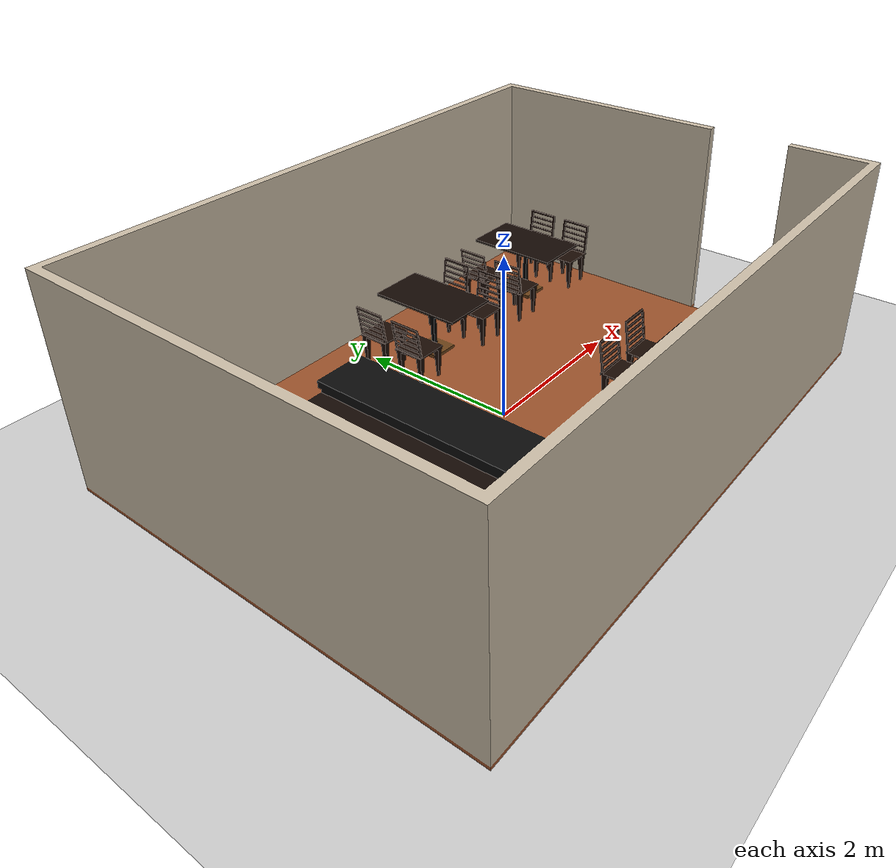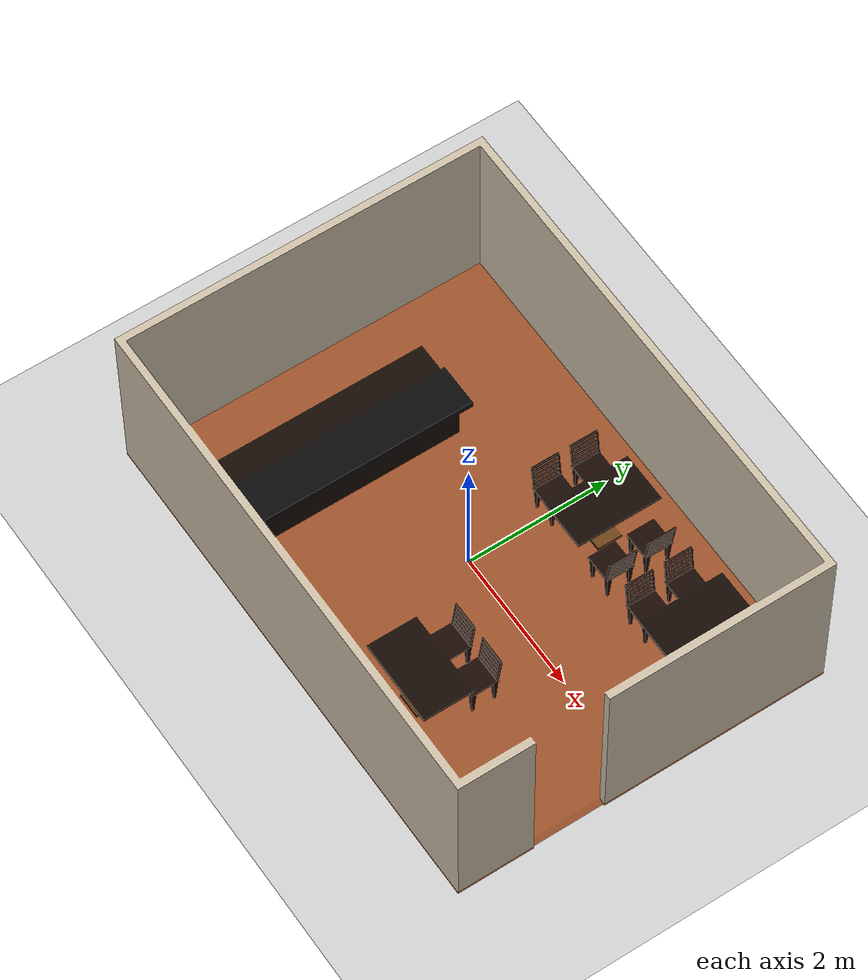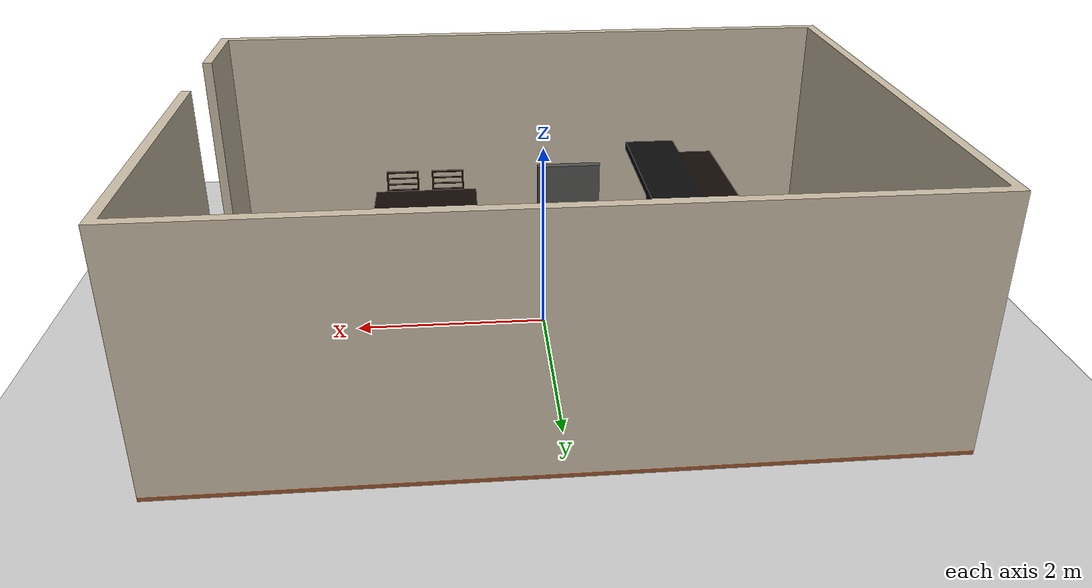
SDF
<?xml version='1.0' encoding='utf-8'?>
<sdf version="1.8">
  <world name="default">
    <physics name="1ms" type="ignored">
            <max_step_size>0.001</max_step_size>
            <real_time_factor>1.0</real_time_factor>
        </physics>
        <plugin
            filename="ignition-gazebo-physics-system"
            name="ignition::gazebo::systems::Physics">
        </plugin>
        <plugin
            filename="ignition-gazebo-user-commands-system"
            name="ignition::gazebo::systems::UserCommands">
        </plugin>
        <plugin
            filename="ignition-gazebo-scene-broadcaster-system"
            name="ignition::gazebo::systems::SceneBroadcaster">
        </plugin>
        <plugin filename="ignition-gazebo-imu-system"
                name="ignition::gazebo::systems::Imu">
        </plugin>
        <plugin filename="ignition-gazebo-sensors-system"
                name="ignition::gazebo::systems::Sensors">
            <render_engine>ogre2</render_engine>
        </plugin>

          <model name="cafeworld">
            <include>
                   <uri>file://home/santhosh/butler_ws/src/butler_bot/models/cafe/cafe.sdf</uri>
            </include>
	      </model>

        <light type="directional" name="sun">
            <cast_shadows>true</cast_shadows>
            <pose>0 0 10 0 0 0</pose>
            <diffuse>0.8 0.8 0.8 1</diffuse>
            <specular>0.2 0.2 0.2 1</specular>
            <attenuation>
                <range>1000</range>
                <constant>0.9</constant>
                <linear>0.01</linear>
                <quadratic>0.001</quadratic>
            </attenuation>
            <direction>-0.5 0.1 -0.9</direction>
        </light>

        <model name="ground_plane">
            <static>true</static>
           <link name="link">
                <collision name="collision">
                    <geometry>
                        <plane>
                            <normal>0 0 1</normal>
                        </plane>
                    </geometry>
                </collision>
                <visual name="visual">
                    <geometry>
                        <plane>
                            <normal>0 0 1</normal>
                            <size>100 100</size>
                        </plane>
                    </geometry>
                    <material>
                        <ambient>0.8 0.8 0.8 1</ambient>
                        <diffuse>0.8 0.8 0.8 1</diffuse>
                        <specular>0.8 0.8 0.8 1</specular>
                    </material>
                </visual>
            </link>
        </model>
    <gui fullscreen='0'>
      <camera name='user_camera'>
        <pose>-3.90827 -4.65526 4.77216 0 0.623643 0.728194</pose>
        <view_controller>orbit</view_controller>
        <projection_type>perspective</projection_type>
      </camera>
    </gui>
  </world>
</sdf>

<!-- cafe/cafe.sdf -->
<sdf version='1.8'>
  <model name='cafe'>
    <link name='link'>
    <inertial>
        <pose>0 0 0 0 0 0</pose>
    <mass>0.5</mass>
          <inertia>
            <ixx>0.0032121799999999998</ixx>
            <ixy>0</ixy>
            <ixz>0</ixz>
            <iyy>0.0032121799999999998</iyy>
            <iyz>0</iyz>
            <izz>0.0061449900000000003</izz>
          </inertia>
        </inertial>

      <collision name='collision'>
        <pose>0 0 0 0 0 0</pose>
        <geometry>
        <mesh>
            <uri>meshes/cafe1.dae</uri>
        </mesh>
        </geometry>
        <max_contacts>10</max_contacts>
        <surface>
          <friction>
            <ode>
              <mu>0.8</mu>
              <mu2>0.8</mu2>
            </ode>
          </friction>
        </surface>
      </collision>

      <visual name='visual'>
        <geometry>
          <mesh>
            <uri>meshes/cafe1.dae</uri>
          </mesh>
        </geometry>
      </visual>

    </link>
    <static>1</static>
    <pose>0.015345 0.015421 0.0297 0 -0 0</pose>
  </model>
</sdf>
